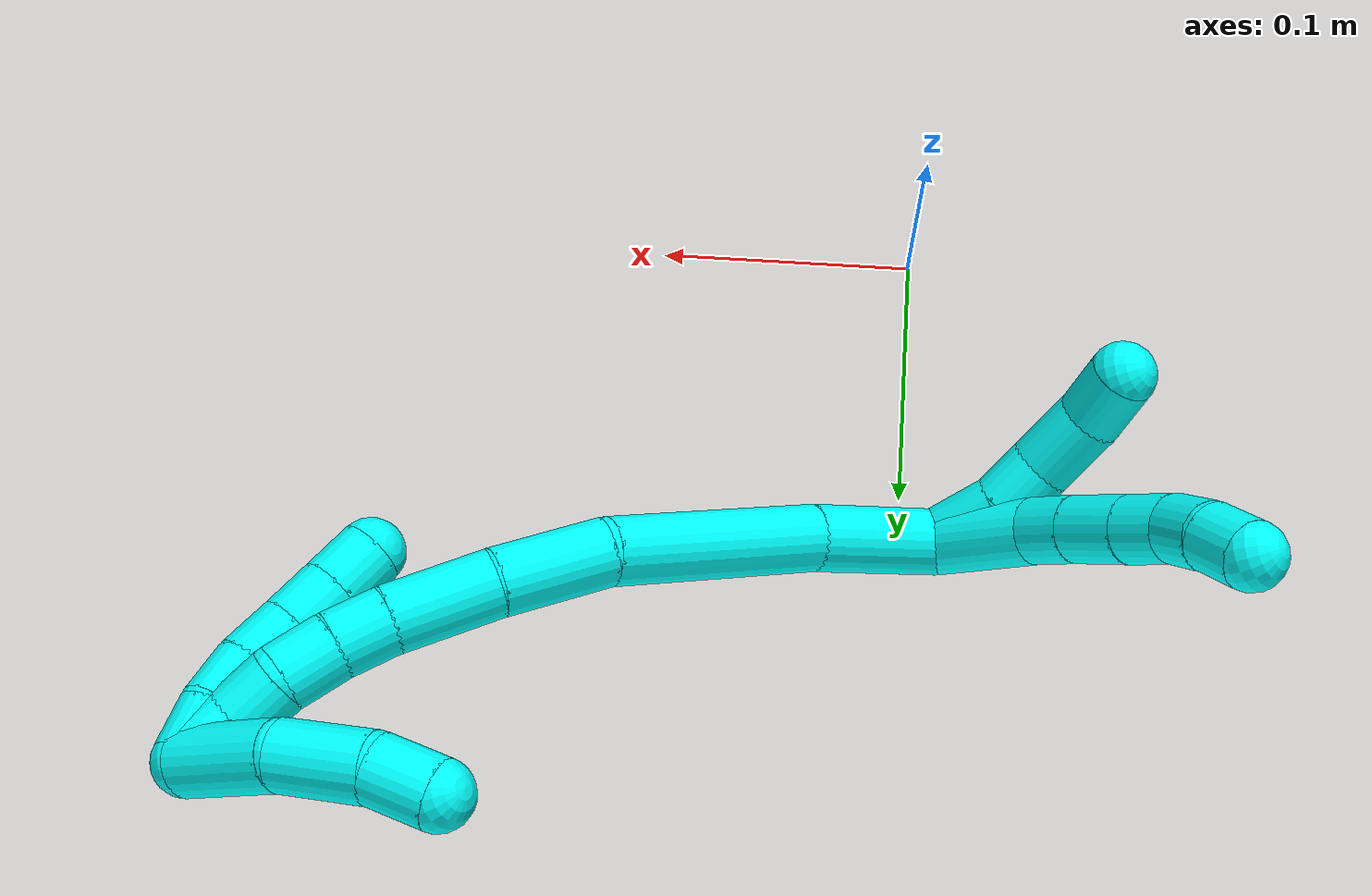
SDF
<sdf version="1.7">
 <world name="default">
  <model name="3">
   <static>0</static>
   <link name="3">
    <collision name="collision-cylinder-e_1_2_8">
     <pose>-0.001 0.002728 0.021095 -0.128603 -0.046985 0.003026</pose>
     <geometry><cylinder><radius>0.0125</radius><length>0.042588</length></cylinder></geometry>
     <surface>
      <friction><ode><mu>1.16</mu><mu2>1.16</mu2><slip1>0</slip1><slip2>0</slip2></ode></friction>
      <contact><ode><kp>1e+06</kp><kd>1</kd><max_vel>0</max_vel><min_depth>0.001</min_depth></ode></contact>
     </surface>
    </collision>
    <visual name="visual-cylinder-e_1_2_8">
     <pose>-0.001 0.002728 0.021095 -0.128603 -0.046985 0.003026</pose>
     <geometry><cylinder><radius>0.0125</radius><length>0.042588</length></cylinder></geometry>
     <material><ambient>0.003922 1 0.996078 1</ambient></material>
    </visual>
    <collision name="collision-cylinder-e_2_8_9">
     <pose>-0.000142 0.007806 0.052301 -0.228407 0.177171 -0.020375</pose>
     <geometry><cylinder><radius>0.0125</radius><length>0.021091</length></cylinder></geometry>
     <surface>
      <friction><ode><mu>1.16</mu><mu2>1.16</mu2><slip1>0</slip1><slip2>0</slip2></ode></friction>
      <contact><ode><kp>1e+06</kp><kd>1</kd><max_vel>0</max_vel><min_depth>0.001</min_depth></ode></contact>
     </surface>
    </collision>
    <visual name="visual-cylinder-e_2_8_9">
     <pose>-0.000142 0.007806 0.052301 -0.228407 0.177171 -0.020375</pose>
     <geometry><cylinder><radius>0.0125</radius><length>0.021091</length></cylinder></geometry>
     <material><ambient>0.003922 1 0.996078 1</ambient></material>
    </visual>
    <collision name="collision-cylinder-e_3_9_10">
     <pose>0.003953 0.013488 0.074493 -0.269053 0.176568 -0.023959</pose>
     <geometry><cylinder><radius>0.0125</radius><length>0.02546</length></cylinder></geometry>
     <surface>
      <friction><ode><mu>1.16</mu><mu2>1.16</mu2><slip1>0</slip1><slip2>0</slip2></ode></friction>
      <contact><ode><kp>1e+06</kp><kd>1</kd><max_vel>0</max_vel><min_depth>0.001</min_depth></ode></contact>
     </surface>
    </collision>
    <visual name="visual-cylinder-e_3_9_10">
     <pose>0.003953 0.013488 0.074493 -0.269053 0.176568 -0.023959</pose>
     <geometry><cylinder><radius>0.0125</radius><length>0.02546</length></cylinder></geometry>
     <material><ambient>0.003922 1 0.996078 1</ambient></material>
    </visual>
    <collision name="collision-cylinder-e_4_10_11">
     <pose>0.007779 0.019211 0.096155 -0.244682 0.15962 -0.019667</pose>
     <geometry><cylinder><radius>0.0125</radius><length>0.020004</length></cylinder></geometry>
     <surface>
      <friction><ode><mu>1.16</mu><mu2>1.16</mu2><slip1>0</slip1><slip2>0</slip2></ode></friction>
      <contact><ode><kp>1e+06</kp><kd>1</kd><max_vel>0</max_vel><min_depth>0.001</min_depth></ode></contact>
     </surface>
    </collision>
    <visual name="visual-cylinder-e_4_10_11">
     <pose>0.007779 0.019211 0.096155 -0.244682 0.15962 -0.019667</pose>
     <geometry><cylinder><radius>0.0125</radius><length>0.020004</length></cylinder></geometry>
     <material><ambient>0.003922 1 0.996078 1</ambient></material>
    </visual>
    <collision name="collision-cylinder-e_5_11_12">
     <pose>0.013225 0.025684 0.114365 -0.441663 0.384001 -0.087225</pose>
     <geometry><cylinder><radius>0.0125</radius><length>0.02059</length></cylinder></geometry>
     <surface>
      <friction><ode><mu>1.16</mu><mu2>1.16</mu2><slip1>0</slip1><slip2>0</slip2></ode></friction>
      <contact><ode><kp>1e+06</kp><kd>1</kd><max_vel>0</max_vel><min_depth>0.001</min_depth></ode></contact>
     </surface>
    </collision>
    <visual name="visual-cylinder-e_5_11_12">
     <pose>0.013225 0.025684 0.114365 -0.441663 0.384001 -0.087225</pose>
     <geometry><cylinder><radius>0.0125</radius><length>0.02059</length></cylinder></geometry>
     <material><ambient>0.003922 1 0.996078 1</ambient></material>
    </visual>
    <collision name="collision-cylinder-e_6_12_6">
     <pose>0.01952 0.035315 0.131114 -0.599746 0.242907 -0.075442</pose>
     <geometry><cylinder><radius>0.0125</radius><length>0.020266</length></cylinder></geometry>
     <surface>
      <friction><ode><mu>1.16</mu><mu2>1.16</mu2><slip1>0</slip1><slip2>0</slip2></ode></friction>
      <contact><ode><kp>1e+06</kp><kd>1</kd><max_vel>0</max_vel><min_depth>0.001</min_depth></ode></contact>
     </surface>
    </collision>
    <visual name="visual-cylinder-e_6_12_6">
     <pose>0.01952 0.035315 0.131114 -0.599746 0.242907 -0.075442</pose>
     <geometry><cylinder><radius>0.0125</radius><length>0.020266</length></cylinder></geometry>
     <material><ambient>0.003922 1 0.996078 1</ambient></material>
    </visual>
    <collision name="collision-cylinder-e_1_2_13">
     <pose>-0.002404 -0.00409 0.013736 0.289423 -0.166181 -0.024272</pose>
     <geometry><cylinder><radius>0.0125</radius><length>0.029064</length></cylinder></geometry>
     <surface>
      <friction><ode><mu>1.16</mu><mu2>1.16</mu2><slip1>0</slip1><slip2>0</slip2></ode></friction>
      <contact><ode><kp>1e+06</kp><kd>1</kd><max_vel>0</max_vel><min_depth>0.001</min_depth></ode></contact>
     </surface>
    </collision>
    <visual name="visual-cylinder-e_1_2_13">
     <pose>-0.002404 -0.00409 0.013736 0.289423 -0.166181 -0.024272</pose>
     <geometry><cylinder><radius>0.0125</radius><length>0.029064</length></cylinder></geometry>
     <material><ambient>0.003922 1 0.996078 1</ambient></material>
    </visual>
    <collision name="collision-cylinder-e_2_13_14">
     <pose>-0.006716 -0.014067 0.035825 0.613881 -0.184594 -0.058658</pose>
     <geometry><cylinder><radius>0.0125</radius><length>0.020791</length></cylinder></geometry>
     <surface>
      <friction><ode><mu>1.16</mu><mu2>1.16</mu2><slip1>0</slip1><slip2>0</slip2></ode></friction>
      <contact><ode><kp>1e+06</kp><kd>1</kd><max_vel>0</max_vel><min_depth>0.001</min_depth></ode></contact>
     </surface>
    </collision>
    <visual name="visual-cylinder-e_2_13_14">
     <pose>-0.006716 -0.014067 0.035825 0.613881 -0.184594 -0.058658</pose>
     <geometry><cylinder><radius>0.0125</radius><length>0.020791</length></cylinder></geometry>
     <material><ambient>0.003922 1 0.996078 1</ambient></material>
    </visual>
    <collision name="collision-cylinder-e_3_14_15">
     <pose>-0.008197 -0.026292 0.056226 0.484301 0.031378 0.007751</pose>
     <geometry><cylinder><radius>0.0125</radius><length>0.027242</length></cylinder></geometry>
     <surface>
      <friction><ode><mu>1.16</mu><mu2>1.16</mu2><slip1>0</slip1><slip2>0</slip2></ode></friction>
      <contact><ode><kp>1e+06</kp><kd>1</kd><max_vel>0</max_vel><min_depth>0.001</min_depth></ode></contact>
     </surface>
    </collision>
    <visual name="visual-cylinder-e_3_14_15">
     <pose>-0.008197 -0.026292 0.056226 0.484301 0.031378 0.007751</pose>
     <geometry><cylinder><radius>0.0125</radius><length>0.027242</length></cylinder></geometry>
     <material><ambient>0.003922 1 0.996078 1</ambient></material>
    </visual>
    <collision name="collision-cylinder-e_4_15_5">
     <pose>-0.004209 -0.037232 0.078139 0.436492 0.316098 0.070664</pose>
     <geometry><cylinder><radius>0.0125</radius><length>0.022903</length></cylinder></geometry>
     <surface>
      <friction><ode><mu>1.16</mu><mu2>1.16</mu2><slip1>0</slip1><slip2>0</slip2></ode></friction>
      <contact><ode><kp>1e+06</kp><kd>1</kd><max_vel>0</max_vel><min_depth>0.001</min_depth></ode></contact>
     </surface>
    </collision>
    <visual name="visual-cylinder-e_4_15_5">
     <pose>-0.004209 -0.037232 0.078139 0.436492 0.316098 0.070664</pose>
     <geometry><cylinder><radius>0.0125</radius><length>0.022903</length></cylinder></geometry>
     <material><ambient>0.003922 1 0.996078 1</ambient></material>
    </visual>
    <collision name="collision-cylinder-e_1_2_16">
     <pose>0.023514 0.000176 -0.011228 -3.1259 1.12524 -3.1167</pose>
     <geometry><cylinder><radius>0.0125</radius><length>0.052115</length></cylinder></geometry>
     <surface>
      <friction><ode><mu>1.16</mu><mu2>1.16</mu2><slip1>0</slip1><slip2>0</slip2></ode></friction>
      <contact><ode><kp>1e+06</kp><kd>1</kd><max_vel>0</max_vel><min_depth>0.001</min_depth></ode></contact>
     </surface>
    </collision>
    <visual name="visual-cylinder-e_1_2_16">
     <pose>0.023514 0.000176 -0.011228 -3.1259 1.12524 -3.1167</pose>
     <geometry><cylinder><radius>0.0125</radius><length>0.052115</length></cylinder></geometry>
     <material><ambient>0.003922 1 0.996078 1</ambient></material>
    </visual>
    <collision name="collision-cylinder-e_2_16_17">
     <pose>0.085899 0.005156 -0.038373 -2.84851 1.16664 -2.70152</pose>
     <geometry><cylinder><radius>0.0125</radius><length>0.084554</length></cylinder></geometry>
     <surface>
      <friction><ode><mu>1.16</mu><mu2>1.16</mu2><slip1>0</slip1><slip2>0</slip2></ode></friction>
      <contact><ode><kp>1e+06</kp><kd>1</kd><max_vel>0</max_vel><min_depth>0.001</min_depth></ode></contact>
     </surface>
    </collision>
    <visual name="visual-cylinder-e_2_16_17">
     <pose>0.085899 0.005156 -0.038373 -2.84851 1.16664 -2.70152</pose>
     <geometry><cylinder><radius>0.0125</radius><length>0.084554</length></cylinder></geometry>
     <material><ambient>0.003922 1 0.996078 1</ambient></material>
    </visual>
    <collision name="collision-cylinder-e_3_17_18">
     <pose>0.141623 0.015495 -0.065495 -2.68269 0.932647 -2.2727</pose>
     <geometry><cylinder><radius>0.0125</radius><length>0.041964</length></cylinder></geometry>
     <surface>
      <friction><ode><mu>1.16</mu><mu2>1.16</mu2><slip1>0</slip1><slip2>0</slip2></ode></friction>
      <contact><ode><kp>1e+06</kp><kd>1</kd><max_vel>0</max_vel><min_depth>0.001</min_depth></ode></contact>
     </surface>
    </collision>
    <visual name="visual-cylinder-e_3_17_18">
     <pose>0.141623 0.015495 -0.065495 -2.68269 0.932647 -2.2727</pose>
     <geometry><cylinder><radius>0.0125</radius><length>0.041964</length></cylinder></geometry>
     <material><ambient>0.003922 1 0.996078 1</ambient></material>
    </visual>
    <collision name="collision-cylinder-e_4_18_19">
     <pose>0.172603 0.026909 -0.088746 -2.68765 0.811729 -2.15529</pose>
     <geometry><cylinder><radius>0.0125</radius><length>0.038947</length></cylinder></geometry>
     <surface>
      <friction><ode><mu>1.16</mu><mu2>1.16</mu2><slip1>0</slip1><slip2>0</slip2></ode></friction>
      <contact><ode><kp>1e+06</kp><kd>1</kd><max_vel>0</max_vel><min_depth>0.001</min_depth></ode></contact>
     </surface>
    </collision>
    <visual name="visual-cylinder-e_4_18_19">
     <pose>0.172603 0.026909 -0.088746 -2.68765 0.811729 -2.15529</pose>
     <geometry><cylinder><radius>0.0125</radius><length>0.038947</length></cylinder></geometry>
     <material><ambient>0.003922 1 0.996078 1</ambient></material>
    </visual>
    <collision name="collision-cylinder-e_5_19_20">
     <pose>0.193957 0.036938 -0.106782 -2.53561 0.781111 -1.84271</pose>
     <geometry><cylinder><radius>0.0125</radius><length>0.020528</length></cylinder></geometry>
     <surface>
      <friction><ode><mu>1.16</mu><mu2>1.16</mu2><slip1>0</slip1><slip2>0</slip2></ode></friction>
      <contact><ode><kp>1e+06</kp><kd>1</kd><max_vel>0</max_vel><min_depth>0.001</min_depth></ode></contact>
     </surface>
    </collision>
    <visual name="visual-cylinder-e_5_19_20">
     <pose>0.193957 0.036938 -0.106782 -2.53561 0.781111 -1.84271</pose>
     <geometry><cylinder><radius>0.0125</radius><length>0.020528</length></cylinder></geometry>
     <material><ambient>0.003922 1 0.996078 1</ambient></material>
    </visual>
    <collision name="collision-cylinder-e_6_20_21">
     <pose>0.208229 0.04645 -0.118659 -2.40289 0.724488 -1.54952</pose>
     <geometry><cylinder><radius>0.0125</radius><length>0.021263</length></cylinder></geometry>
     <surface>
      <friction><ode><mu>1.16</mu><mu2>1.16</mu2><slip1>0</slip1><slip2>0</slip2></ode></friction>
      <contact><ode><kp>1e+06</kp><kd>1</kd><max_vel>0</max_vel><min_depth>0.001</min_depth></ode></contact>
     </surface>
    </collision>
    <visual name="visual-cylinder-e_6_20_21">
     <pose>0.208229 0.04645 -0.118659 -2.40289 0.724488 -1.54952</pose>
     <geometry><cylinder><radius>0.0125</radius><length>0.021263</length></cylinder></geometry>
     <material><ambient>0.003922 1 0.996078 1</ambient></material>
    </visual>
    <collision name="collision-cylinder-e_7_21_22">
     <pose>0.219126 0.05781 -0.131592 -2.43624 0.394288 -0.994399</pose>
     <geometry><cylinder><radius>0.0125</radius><length>0.020049</length></cylinder></geometry>
     <surface>
      <friction><ode><mu>1.16</mu><mu2>1.16</mu2><slip1>0</slip1><slip2>0</slip2></ode></friction>
      <contact><ode><kp>1e+06</kp><kd>1</kd><max_vel>0</max_vel><min_depth>0.001</min_depth></ode></contact>
     </surface>
    </collision>
    <visual name="visual-cylinder-e_7_21_22">
     <pose>0.219126 0.05781 -0.131592 -2.43624 0.394288 -0.994399</pose>
     <geometry><cylinder><radius>0.0125</radius><length>0.020049</length></cylinder></geometry>
     <material><ambient>0.003922 1 0.996078 1</ambient></material>
    </visual>
    <collision name="collision-cylinder-e_8_22_1">
     <pose>0.228316 0.070229 -0.144654 -2.32382 0.545492 -1.14646</pose>
     <geometry><cylinder><radius>0.0125</radius><length>0.02058</length></cylinder></geometry>
     <surface>
      <friction><ode><mu>1.16</mu><mu2>1.16</mu2><slip1>0</slip1><slip2>0</slip2></ode></friction>
      <contact><ode><kp>1e+06</kp><kd>1</kd><max_vel>0</max_vel><min_depth>0.001</min_depth></ode></contact>
     </surface>
    </collision>
    <visual name="visual-cylinder-e_8_22_1">
     <pose>0.228316 0.070229 -0.144654 -2.32382 0.545492 -1.14646</pose>
     <geometry><cylinder><radius>0.0125</radius><length>0.02058</length></cylinder></geometry>
     <material><ambient>0.003922 1 0.996078 1</ambient></material>
    </visual>
    <collision name="collision-cylinder-e_1_1_23">
     <pose>0.229211 0.067833 -0.149068 1.391 -0.460493 -0.386396</pose>
     <geometry><cylinder><radius>0.0125</radius><length>0.02</length></cylinder></geometry>
     <surface>
      <friction><ode><mu>1.16</mu><mu2>1.16</mu2><slip1>0</slip1><slip2>0</slip2></ode></friction>
      <contact><ode><kp>1e+06</kp><kd>1</kd><max_vel>0</max_vel><min_depth>0.001</min_depth></ode></contact>
     </surface>
    </collision>
    <visual name="visual-cylinder-e_1_1_23">
     <pose>0.229211 0.067833 -0.149068 1.391 -0.460493 -0.386396</pose>
     <geometry><cylinder><radius>0.0125</radius><length>0.02</length></cylinder></geometry>
     <material><ambient>0.003922 1 0.996078 1</ambient></material>
    </visual>
    <collision name="collision-cylinder-e_2_23_24">
     <pose>0.21878 0.051214 -0.145667 1.34432 -0.641898 -0.517252</pose>
     <geometry><cylinder><radius>0.0125</radius><length>0.02</length></cylinder></geometry>
     <surface>
      <friction><ode><mu>1.16</mu><mu2>1.16</mu2><slip1>0</slip1><slip2>0</slip2></ode></friction>
      <contact><ode><kp>1e+06</kp><kd>1</kd><max_vel>0</max_vel><min_depth>0.001</min_depth></ode></contact>
     </surface>
    </collision>
    <visual name="visual-cylinder-e_2_23_24">
     <pose>0.21878 0.051214 -0.145667 1.34432 -0.641898 -0.517252</pose>
     <geometry><cylinder><radius>0.0125</radius><length>0.02</length></cylinder></geometry>
     <material><ambient>0.003922 1 0.996078 1</ambient></material>
    </visual>
    <collision name="collision-cylinder-e_3_24_25">
     <pose>0.206473 0.036668 -0.140045 1.05483 -0.684053 -0.408932</pose>
     <geometry><cylinder><radius>0.0125</radius><length>0.02</length></cylinder></geometry>
     <surface>
      <friction><ode><mu>1.16</mu><mu2>1.16</mu2><slip1>0</slip1><slip2>0</slip2></ode></friction>
      <contact><ode><kp>1e+06</kp><kd>1</kd><max_vel>0</max_vel><min_depth>0.001</min_depth></ode></contact>
     </surface>
    </collision>
    <visual name="visual-cylinder-e_3_24_25">
     <pose>0.206473 0.036668 -0.140045 1.05483 -0.684053 -0.408932</pose>
     <geometry><cylinder><radius>0.0125</radius><length>0.02</length></cylinder></geometry>
     <material><ambient>0.003922 1 0.996078 1</ambient></material>
    </visual>
    <collision name="collision-cylinder-e_4_25_26">
     <pose>0.193968 0.023058 -0.132406 1.06374 -0.666949 -0.402169</pose>
     <geometry><cylinder><radius>0.0125</radius><length>0.02</length></cylinder></geometry>
     <surface>
      <friction><ode><mu>1.16</mu><mu2>1.16</mu2><slip1>0</slip1><slip2>0</slip2></ode></friction>
      <contact><ode><kp>1e+06</kp><kd>1</kd><max_vel>0</max_vel><min_depth>0.001</min_depth></ode></contact>
     </surface>
    </collision>
    <visual name="visual-cylinder-e_4_25_26">
     <pose>0.193968 0.023058 -0.132406 1.06374 -0.666949 -0.402169</pose>
     <geometry><cylinder><radius>0.0125</radius><length>0.02</length></cylinder></geometry>
     <material><ambient>0.003922 1 0.996078 1</ambient></material>
    </visual>
    <collision name="collision-cylinder-e_5_26_4">
     <pose>0.181712 0.0093 -0.124629 1.04905 -0.652235 -0.386462</pose>
     <geometry><cylinder><radius>0.0125</radius><length>0.02</length></cylinder></geometry>
     <surface>
      <friction><ode><mu>1.16</mu><mu2>1.16</mu2><slip1>0</slip1><slip2>0</slip2></ode></friction>
      <contact><ode><kp>1e+06</kp><kd>1</kd><max_vel>0</max_vel><min_depth>0.001</min_depth></ode></contact>
     </surface>
    </collision>
    <visual name="visual-cylinder-e_5_26_4">
     <pose>0.181712 0.0093 -0.124629 1.04905 -0.652235 -0.386462</pose>
     <geometry><cylinder><radius>0.0125</radius><length>0.02</length></cylinder></geometry>
     <material><ambient>0.003922 1 0.996078 1</ambient></material>
    </visual>
    <collision name="collision-cylinder-e_1_1_27">
     <pose>0.230927 0.078984 -0.130137 -0.113331 -0.131252 0.007456</pose>
     <geometry><cylinder><radius>0.0125</radius><length>0.041688</length></cylinder></geometry>
     <surface>
      <friction><ode><mu>1.16</mu><mu2>1.16</mu2><slip1>0</slip1><slip2>0</slip2></ode></friction>
      <contact><ode><kp>1e+06</kp><kd>1</kd><max_vel>0</max_vel><min_depth>0.001</min_depth></ode></contact>
     </surface>
    </collision>
    <visual name="visual-cylinder-e_1_1_27">
     <pose>0.230927 0.078984 -0.130137 -0.113331 -0.131252 0.007456</pose>
     <geometry><cylinder><radius>0.0125</radius><length>0.041688</length></cylinder></geometry>
     <material><ambient>0.003922 1 0.996078 1</ambient></material>
    </visual>
    <collision name="collision-cylinder-e_2_27_28">
     <pose>0.221936 0.08565 -0.093889 -0.268814 -0.366783 0.05015</pose>
     <geometry><cylinder><radius>0.0125</radius><length>0.034925</length></cylinder></geometry>
     <surface>
      <friction><ode><mu>1.16</mu><mu2>1.16</mu2><slip1>0</slip1><slip2>0</slip2></ode></friction>
      <contact><ode><kp>1e+06</kp><kd>1</kd><max_vel>0</max_vel><min_depth>0.001</min_depth></ode></contact>
     </surface>
    </collision>
    <visual name="visual-cylinder-e_2_27_28">
     <pose>0.221936 0.08565 -0.093889 -0.268814 -0.366783 0.05015</pose>
     <geometry><cylinder><radius>0.0125</radius><length>0.034925</length></cylinder></geometry>
     <material><ambient>0.003922 1 0.996078 1</ambient></material>
    </visual>
    <collision name="collision-cylinder-e_3_28_3">
     <pose>0.210628 0.095346 -0.069093 -0.533754 -0.446249 0.123911</pose>
     <geometry><cylinder><radius>0.0125</radius><length>0.023386</length></cylinder></geometry>
     <surface>
      <friction><ode><mu>1.16</mu><mu2>1.16</mu2><slip1>0</slip1><slip2>0</slip2></ode></friction>
      <contact><ode><kp>1e+06</kp><kd>1</kd><max_vel>0</max_vel><min_depth>0.001</min_depth></ode></contact>
     </surface>
    </collision>
    <visual name="visual-cylinder-e_3_28_3">
     <pose>0.210628 0.095346 -0.069093 -0.533754 -0.446249 0.123911</pose>
     <geometry><cylinder><radius>0.0125</radius><length>0.023386</length></cylinder></geometry>
     <material><ambient>0.003922 1 0.996078 1</ambient></material>
    </visual>
    <collision name="collision-sphere-3">
     <pose>0.205581 0.100713 -0.060012 0 -0 0</pose>
     <geometry><sphere><radius>0.0125</radius></sphere></geometry>
     <surface>
      <friction><ode><mu>1.16</mu><mu2>1.16</mu2><slip1>0</slip1><slip2>0</slip2></ode></friction>
      <contact><ode><kp>1e+06</kp><kd>1</kd><max_vel>0</max_vel><min_depth>0.001</min_depth></ode></contact>
     </surface>
    </collision>
    <visual name="visual-sphere-3">
     <pose>0.205581 0.100713 -0.060012 0 -0 0</pose>
     <geometry><sphere><radius>0.0125</radius></sphere></geometry>
     <material><ambient>0.003922 1 0.996078 1</ambient></material>
    </visual>
    <collision name="collision-sphere-28">
     <pose>0.215674 0.08998 -0.078174 0 -0 0</pose>
     <geometry><sphere><radius>0.0125</radius></sphere></geometry>
     <surface>
      <friction><ode><mu>1.16</mu><mu2>1.16</mu2><slip1>0</slip1><slip2>0</slip2></ode></friction>
      <contact><ode><kp>1e+06</kp><kd>1</kd><max_vel>0</max_vel><min_depth>0.001</min_depth></ode></contact>
     </surface>
    </collision>
    <visual name="visual-sphere-28">
     <pose>0.215674 0.08998 -0.078174 0 -0 0</pose>
     <geometry><sphere><radius>0.0125</radius></sphere></geometry>
     <material><ambient>0.003922 1 0.996078 1</ambient></material>
    </visual>
    <collision name="collision-sphere-27">
     <pose>0.228199 0.081321 -0.109605 0 -0 0</pose>
     <geometry><sphere><radius>0.0125</radius></sphere></geometry>
     <surface>
      <friction><ode><mu>1.16</mu><mu2>1.16</mu2><slip1>0</slip1><slip2>0</slip2></ode></friction>
      <contact><ode><kp>1e+06</kp><kd>1</kd><max_vel>0</max_vel><min_depth>0.001</min_depth></ode></contact>
     </surface>
    </collision>
    <visual name="visual-sphere-27">
     <pose>0.228199 0.081321 -0.109605 0 -0 0</pose>
     <geometry><sphere><radius>0.0125</radius></sphere></geometry>
     <material><ambient>0.003922 1 0.996078 1</ambient></material>
    </visual>
    <collision name="collision-sphere-4">
     <pose>0.175643 0.00241 -0.120669 0 -0 0</pose>
     <geometry><sphere><radius>0.0125</radius></sphere></geometry>
     <surface>
      <friction><ode><mu>1.16</mu><mu2>1.16</mu2><slip1>0</slip1><slip2>0</slip2></ode></friction>
      <contact><ode><kp>1e+06</kp><kd>1</kd><max_vel>0</max_vel><min_depth>0.001</min_depth></ode></contact>
     </surface>
    </collision>
    <visual name="visual-sphere-4">
     <pose>0.175643 0.00241 -0.120669 0 -0 0</pose>
     <geometry><sphere><radius>0.0125</radius></sphere></geometry>
     <material><ambient>0.003922 1 0.996078 1</ambient></material>
    </visual>
    <collision name="collision-sphere-26">
     <pose>0.187782 0.016189 -0.12859 0 -0 0</pose>
     <geometry><sphere><radius>0.0125</radius></sphere></geometry>
     <surface>
      <friction><ode><mu>1.16</mu><mu2>1.16</mu2><slip1>0</slip1><slip2>0</slip2></ode></friction>
      <contact><ode><kp>1e+06</kp><kd>1</kd><max_vel>0</max_vel><min_depth>0.001</min_depth></ode></contact>
     </surface>
    </collision>
    <visual name="visual-sphere-26">
     <pose>0.187782 0.016189 -0.12859 0 -0 0</pose>
     <geometry><sphere><radius>0.0125</radius></sphere></geometry>
     <material><ambient>0.003922 1 0.996078 1</ambient></material>
    </visual>
    <collision name="collision-sphere-25">
     <pose>0.200154 0.029927 -0.136221 0 -0 0</pose>
     <geometry><sphere><radius>0.0125</radius></sphere></geometry>
     <surface>
      <friction><ode><mu>1.16</mu><mu2>1.16</mu2><slip1>0</slip1><slip2>0</slip2></ode></friction>
      <contact><ode><kp>1e+06</kp><kd>1</kd><max_vel>0</max_vel><min_depth>0.001</min_depth></ode></contact>
     </surface>
    </collision>
    <visual name="visual-sphere-25">
     <pose>0.200154 0.029927 -0.136221 0 -0 0</pose>
     <geometry><sphere><radius>0.0125</radius></sphere></geometry>
     <material><ambient>0.003922 1 0.996078 1</ambient></material>
    </visual>
    <collision name="collision-sphere-24">
     <pose>0.212793 0.043409 -0.143869 0 -0 0</pose>
     <geometry><sphere><radius>0.0125</radius></sphere></geometry>
     <surface>
      <friction><ode><mu>1.16</mu><mu2>1.16</mu2><slip1>0</slip1><slip2>0</slip2></ode></friction>
      <contact><ode><kp>1e+06</kp><kd>1</kd><max_vel>0</max_vel><min_depth>0.001</min_depth></ode></contact>
     </surface>
    </collision>
    <visual name="visual-sphere-24">
     <pose>0.212793 0.043409 -0.143869 0 -0 0</pose>
     <geometry><sphere><radius>0.0125</radius></sphere></geometry>
     <material><ambient>0.003922 1 0.996078 1</ambient></material>
    </visual>
    <collision name="collision-sphere-23">
     <pose>0.224767 0.059019 -0.147466 0 -0 0</pose>
     <geometry><sphere><radius>0.0125</radius></sphere></geometry>
     <surface>
      <friction><ode><mu>1.16</mu><mu2>1.16</mu2><slip1>0</slip1><slip2>0</slip2></ode></friction>
      <contact><ode><kp>1e+06</kp><kd>1</kd><max_vel>0</max_vel><min_depth>0.001</min_depth></ode></contact>
     </surface>
    </collision>
    <visual name="visual-sphere-23">
     <pose>0.224767 0.059019 -0.147466 0 -0 0</pose>
     <geometry><sphere><radius>0.0125</radius></sphere></geometry>
     <material><ambient>0.003922 1 0.996078 1</ambient></material>
    </visual>
    <collision name="collision-sphere-1">
     <pose>0.233655 0.076647 -0.15067 0 -0 0</pose>
     <geometry><sphere><radius>0.0125</radius></sphere></geometry>
     <surface>
      <friction><ode><mu>1.16</mu><mu2>1.16</mu2><slip1>0</slip1><slip2>0</slip2></ode></friction>
      <contact><ode><kp>1e+06</kp><kd>1</kd><max_vel>0</max_vel><min_depth>0.001</min_depth></ode></contact>
     </surface>
    </collision>
    <visual name="visual-sphere-1">
     <pose>0.233655 0.076647 -0.15067 0 -0 0</pose>
     <geometry><sphere><radius>0.0125</radius></sphere></geometry>
     <material><ambient>0.003922 1 0.996078 1</ambient></material>
    </visual>
    <collision name="collision-sphere-22">
     <pose>0.222977 0.06381 -0.138639 0 -0 0</pose>
     <geometry><sphere><radius>0.0125</radius></sphere></geometry>
     <surface>
      <friction><ode><mu>1.16</mu><mu2>1.16</mu2><slip1>0</slip1><slip2>0</slip2></ode></friction>
      <contact><ode><kp>1e+06</kp><kd>1</kd><max_vel>0</max_vel><min_depth>0.001</min_depth></ode></contact>
     </surface>
    </collision>
    <visual name="visual-sphere-22">
     <pose>0.222977 0.06381 -0.138639 0 -0 0</pose>
     <geometry><sphere><radius>0.0125</radius></sphere></geometry>
     <material><ambient>0.003922 1 0.996078 1</ambient></material>
    </visual>
    <collision name="collision-sphere-21">
     <pose>0.215275 0.05181 -0.124545 0 -0 0</pose>
     <geometry><sphere><radius>0.0125</radius></sphere></geometry>
     <surface>
      <friction><ode><mu>1.16</mu><mu2>1.16</mu2><slip1>0</slip1><slip2>0</slip2></ode></friction>
      <contact><ode><kp>1e+06</kp><kd>1</kd><max_vel>0</max_vel><min_depth>0.001</min_depth></ode></contact>
     </surface>
    </collision>
    <visual name="visual-sphere-21">
     <pose>0.215275 0.05181 -0.124545 0 -0 0</pose>
     <geometry><sphere><radius>0.0125</radius></sphere></geometry>
     <material><ambient>0.003922 1 0.996078 1</ambient></material>
    </visual>
    <collision name="collision-sphere-12">
     <pose>0.017082 0.029764 0.122995 0 -0 0</pose>
     <geometry><sphere><radius>0.0125</radius></sphere></geometry>
     <surface>
      <friction><ode><mu>1.16</mu><mu2>1.16</mu2><slip1>0</slip1><slip2>0</slip2></ode></friction>
      <contact><ode><kp>1e+06</kp><kd>1</kd><max_vel>0</max_vel><min_depth>0.001</min_depth></ode></contact>
     </surface>
    </collision>
    <visual name="visual-sphere-12">
     <pose>0.017082 0.029764 0.122995 0 -0 0</pose>
     <geometry><sphere><radius>0.0125</radius></sphere></geometry>
     <material><ambient>0.003922 1 0.996078 1</ambient></material>
    </visual>
    <collision name="collision-sphere-11">
     <pose>0.009369 0.021604 0.105736 0 -0 0</pose>
     <geometry><sphere><radius>0.0125</radius></sphere></geometry>
     <surface>
      <friction><ode><mu>1.16</mu><mu2>1.16</mu2><slip1>0</slip1><slip2>0</slip2></ode></friction>
      <contact><ode><kp>1e+06</kp><kd>1</kd><max_vel>0</max_vel><min_depth>0.001</min_depth></ode></contact>
     </surface>
    </collision>
    <visual name="visual-sphere-11">
     <pose>0.009369 0.021604 0.105736 0 -0 0</pose>
     <geometry><sphere><radius>0.0125</radius></sphere></geometry>
     <material><ambient>0.003922 1 0.996078 1</ambient></material>
    </visual>
    <collision name="collision-sphere-10">
     <pose>0.006189 0.016819 0.086574 0 -0 0</pose>
     <geometry><sphere><radius>0.0125</radius></sphere></geometry>
     <surface>
      <friction><ode><mu>1.16</mu><mu2>1.16</mu2><slip1>0</slip1><slip2>0</slip2></ode></friction>
      <contact><ode><kp>1e+06</kp><kd>1</kd><max_vel>0</max_vel><min_depth>0.001</min_depth></ode></contact>
     </surface>
    </collision>
    <visual name="visual-sphere-10">
     <pose>0.006189 0.016819 0.086574 0 -0 0</pose>
     <geometry><sphere><radius>0.0125</radius></sphere></geometry>
     <material><ambient>0.003922 1 0.996078 1</ambient></material>
    </visual>
    <collision name="collision-sphere-9">
     <pose>0.001717 0.010157 0.062412 0 -0 0</pose>
     <geometry><sphere><radius>0.0125</radius></sphere></geometry>
     <surface>
      <friction><ode><mu>1.16</mu><mu2>1.16</mu2><slip1>0</slip1><slip2>0</slip2></ode></friction>
      <contact><ode><kp>1e+06</kp><kd>1</kd><max_vel>0</max_vel><min_depth>0.001</min_depth></ode></contact>
     </surface>
    </collision>
    <visual name="visual-sphere-9">
     <pose>0.001717 0.010157 0.062412 0 -0 0</pose>
     <geometry><sphere><radius>0.0125</radius></sphere></geometry>
     <material><ambient>0.003922 1 0.996078 1</ambient></material>
    </visual>
    <collision name="collision-sphere-2">
     <geometry><sphere><radius>0.0125</radius></sphere></geometry>
     <surface>
      <friction><ode><mu>1.16</mu><mu2>1.16</mu2><slip1>0</slip1><slip2>0</slip2></ode></friction>
      <contact><ode><kp>1e+06</kp><kd>1</kd><max_vel>0</max_vel><min_depth>0.001</min_depth></ode></contact>
     </surface>
    </collision>
    <visual name="visual-sphere-2">
     <geometry><sphere><radius>0.0125</radius></sphere></geometry>
     <material><ambient>0.003922 1 0.996078 1</ambient></material>
    </visual>
    <collision name="collision-sphere-19">
     <pose>0.18673 0.032786 -0.100791 0 -0 0</pose>
     <geometry><sphere><radius>0.0125</radius></sphere></geometry>
     <surface>
      <friction><ode><mu>1.16</mu><mu2>1.16</mu2><slip1>0</slip1><slip2>0</slip2></ode></friction>
      <contact><ode><kp>1e+06</kp><kd>1</kd><max_vel>0</max_vel><min_depth>0.001</min_depth></ode></contact>
     </surface>
    </collision>
    <visual name="visual-sphere-19">
     <pose>0.18673 0.032786 -0.100791 0 -0 0</pose>
     <geometry><sphere><radius>0.0125</radius></sphere></geometry>
     <material><ambient>0.003922 1 0.996078 1</ambient></material>
    </visual>
    <collision name="collision-sphere-8">
     <pose>-0.002 0.005456 0.04219 0 -0 0</pose>
     <geometry><sphere><radius>0.0125</radius></sphere></geometry>
     <surface>
      <friction><ode><mu>1.16</mu><mu2>1.16</mu2><slip1>0</slip1><slip2>0</slip2></ode></friction>
      <contact><ode><kp>1e+06</kp><kd>1</kd><max_vel>0</max_vel><min_depth>0.001</min_depth></ode></contact>
     </surface>
    </collision>
    <visual name="visual-sphere-8">
     <pose>-0.002 0.005456 0.04219 0 -0 0</pose>
     <geometry><sphere><radius>0.0125</radius></sphere></geometry>
     <material><ambient>0.003922 1 0.996078 1</ambient></material>
    </visual>
    <collision name="collision-sphere-6">
     <pose>0.021957 0.040867 0.139233 0 -0 0</pose>
     <geometry><sphere><radius>0.0125</radius></sphere></geometry>
     <surface>
      <friction><ode><mu>1.16</mu><mu2>1.16</mu2><slip1>0</slip1><slip2>0</slip2></ode></friction>
      <contact><ode><kp>1e+06</kp><kd>1</kd><max_vel>0</max_vel><min_depth>0.001</min_depth></ode></contact>
     </surface>
    </collision>
    <visual name="visual-sphere-6">
     <pose>0.021957 0.040867 0.139233 0 -0 0</pose>
     <geometry><sphere><radius>0.0125</radius></sphere></geometry>
     <material><ambient>0.003922 1 0.996078 1</ambient></material>
    </visual>
    <collision name="collision-sphere-13">
     <pose>-0.004808 -0.008181 0.027472 0 -0 0</pose>
     <geometry><sphere><radius>0.0125</radius></sphere></geometry>
     <surface>
      <friction><ode><mu>1.16</mu><mu2>1.16</mu2><slip1>0</slip1><slip2>0</slip2></ode></friction>
      <contact><ode><kp>1e+06</kp><kd>1</kd><max_vel>0</max_vel><min_depth>0.001</min_depth></ode></contact>
     </surface>
    </collision>
    <visual name="visual-sphere-13">
     <pose>-0.004808 -0.008181 0.027472 0 -0 0</pose>
     <geometry><sphere><radius>0.0125</radius></sphere></geometry>
     <material><ambient>0.003922 1 0.996078 1</ambient></material>
    </visual>
    <collision name="collision-sphere-14">
     <pose>-0.008624 -0.019954 0.044178 0 -0 0</pose>
     <geometry><sphere><radius>0.0125</radius></sphere></geometry>
     <surface>
      <friction><ode><mu>1.16</mu><mu2>1.16</mu2><slip1>0</slip1><slip2>0</slip2></ode></friction>
      <contact><ode><kp>1e+06</kp><kd>1</kd><max_vel>0</max_vel><min_depth>0.001</min_depth></ode></contact>
     </surface>
    </collision>
    <visual name="visual-sphere-14">
     <pose>-0.008624 -0.019954 0.044178 0 -0 0</pose>
     <geometry><sphere><radius>0.0125</radius></sphere></geometry>
     <material><ambient>0.003922 1 0.996078 1</ambient></material>
    </visual>
    <collision name="collision-sphere-15">
     <pose>-0.007769 -0.032631 0.068275 0 -0 0</pose>
     <geometry><sphere><radius>0.0125</radius></sphere></geometry>
     <surface>
      <friction><ode><mu>1.16</mu><mu2>1.16</mu2><slip1>0</slip1><slip2>0</slip2></ode></friction>
      <contact><ode><kp>1e+06</kp><kd>1</kd><max_vel>0</max_vel><min_depth>0.001</min_depth></ode></contact>
     </surface>
    </collision>
    <visual name="visual-sphere-15">
     <pose>-0.007769 -0.032631 0.068275 0 -0 0</pose>
     <geometry><sphere><radius>0.0125</radius></sphere></geometry>
     <material><ambient>0.003922 1 0.996078 1</ambient></material>
    </visual>
    <collision name="collision-sphere-5">
     <pose>-0.00065 -0.041834 0.088002 0 -0 0</pose>
     <geometry><sphere><radius>0.0125</radius></sphere></geometry>
     <surface>
      <friction><ode><mu>1.16</mu><mu2>1.16</mu2><slip1>0</slip1><slip2>0</slip2></ode></friction>
      <contact><ode><kp>1e+06</kp><kd>1</kd><max_vel>0</max_vel><min_depth>0.001</min_depth></ode></contact>
     </surface>
    </collision>
    <visual name="visual-sphere-5">
     <pose>-0.00065 -0.041834 0.088002 0 -0 0</pose>
     <geometry><sphere><radius>0.0125</radius></sphere></geometry>
     <material><ambient>0.003922 1 0.996078 1</ambient></material>
    </visual>
    <collision name="collision-sphere-16">
     <pose>0.047028 0.000352 -0.022457 0 -0 0</pose>
     <geometry><sphere><radius>0.0125</radius></sphere></geometry>
     <surface>
      <friction><ode><mu>1.16</mu><mu2>1.16</mu2><slip1>0</slip1><slip2>0</slip2></ode></friction>
      <contact><ode><kp>1e+06</kp><kd>1</kd><max_vel>0</max_vel><min_depth>0.001</min_depth></ode></contact>
     </surface>
    </collision>
    <visual name="visual-sphere-16">
     <pose>0.047028 0.000352 -0.022457 0 -0 0</pose>
     <geometry><sphere><radius>0.0125</radius></sphere></geometry>
     <material><ambient>0.003922 1 0.996078 1</ambient></material>
    </visual>
    <collision name="collision-sphere-17">
     <pose>0.12477 0.009959 -0.054289 0 -0 0</pose>
     <geometry><sphere><radius>0.0125</radius></sphere></geometry>
     <surface>
      <friction><ode><mu>1.16</mu><mu2>1.16</mu2><slip1>0</slip1><slip2>0</slip2></ode></friction>
      <contact><ode><kp>1e+06</kp><kd>1</kd><max_vel>0</max_vel><min_depth>0.001</min_depth></ode></contact>
     </surface>
    </collision>
    <visual name="visual-sphere-17">
     <pose>0.12477 0.009959 -0.054289 0 -0 0</pose>
     <geometry><sphere><radius>0.0125</radius></sphere></geometry>
     <material><ambient>0.003922 1 0.996078 1</ambient></material>
    </visual>
    <collision name="collision-sphere-18">
     <pose>0.158475 0.021032 -0.076701 0 -0 0</pose>
     <geometry><sphere><radius>0.0125</radius></sphere></geometry>
     <surface>
      <friction><ode><mu>1.16</mu><mu2>1.16</mu2><slip1>0</slip1><slip2>0</slip2></ode></friction>
      <contact><ode><kp>1e+06</kp><kd>1</kd><max_vel>0</max_vel><min_depth>0.001</min_depth></ode></contact>
     </surface>
    </collision>
    <visual name="visual-sphere-18">
     <pose>0.158475 0.021032 -0.076701 0 -0 0</pose>
     <geometry><sphere><radius>0.0125</radius></sphere></geometry>
     <material><ambient>0.003922 1 0.996078 1</ambient></material>
    </visual>
    <collision name="collision-sphere-20">
     <pose>0.201183 0.041089 -0.112773 0 -0 0</pose>
     <geometry><sphere><radius>0.0125</radius></sphere></geometry>
     <surface>
      <friction><ode><mu>1.16</mu><mu2>1.16</mu2><slip1>0</slip1><slip2>0</slip2></ode></friction>
      <contact><ode><kp>1e+06</kp><kd>1</kd><max_vel>0</max_vel><min_depth>0.001</min_depth></ode></contact>
     </surface>
    </collision>
    <visual name="visual-sphere-20">
     <pose>0.201183 0.041089 -0.112773 0 -0 0</pose>
     <geometry><sphere><radius>0.0125</radius></sphere></geometry>
     <material><ambient>0.003922 1 0.996078 1</ambient></material>
    </visual>
    <inertial>
     <pose>0.109215 0.025389 -0.038963 0 -0 0</pose>
     <mass>0.75</mass>
     <inertia><ixx>5e-06</ixx><ixy>0</ixy><ixz>0</ixz><iyy>0.000101</iyy><iyz>0</iyz><izz>-6.5e-05</izz></inertia>
    </inertial>
   </link>
   <pose>-0.01198 0.129696 0.045129 -0.028775 -0.85863 0.159515</pose>
  </model>
 </world>
</sdf>
